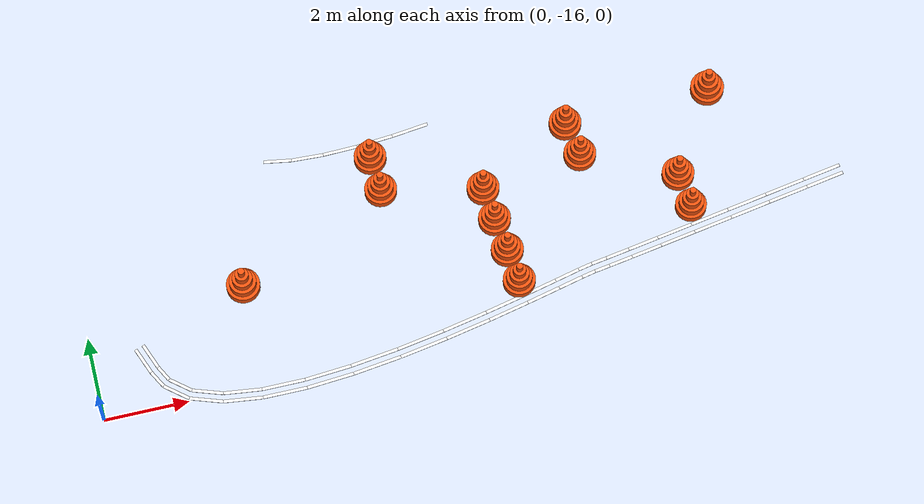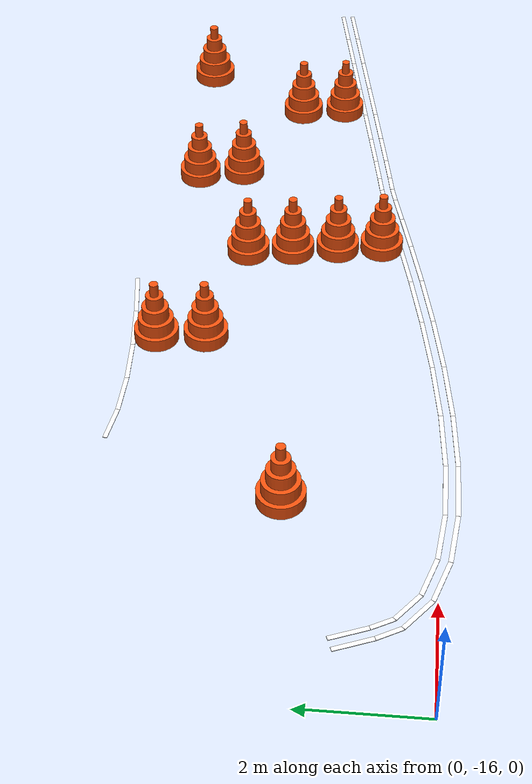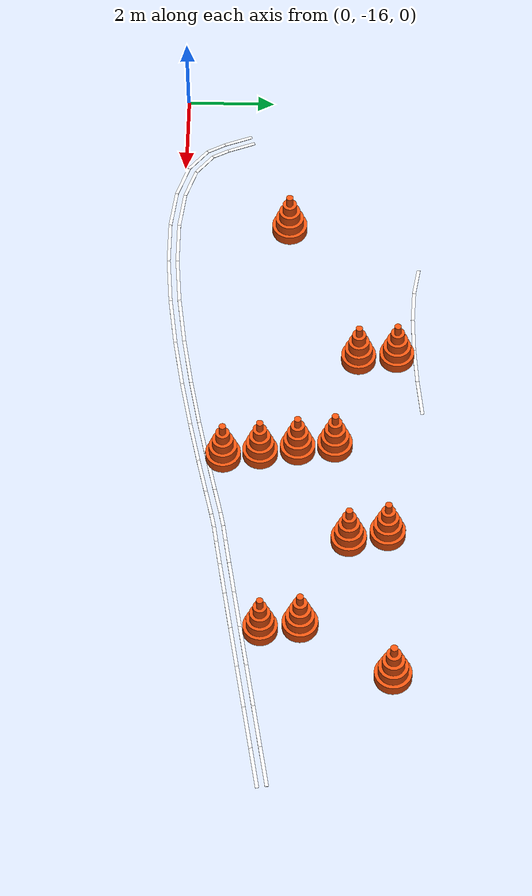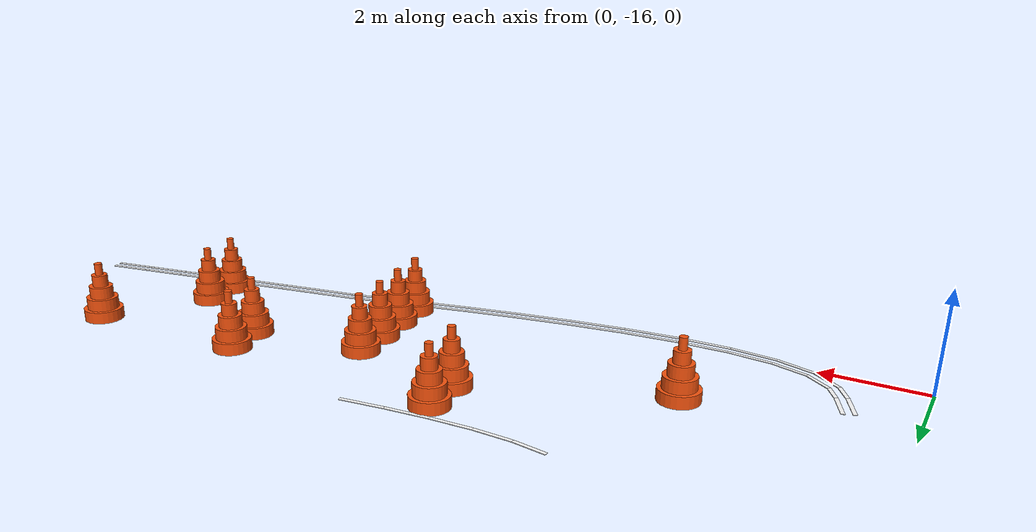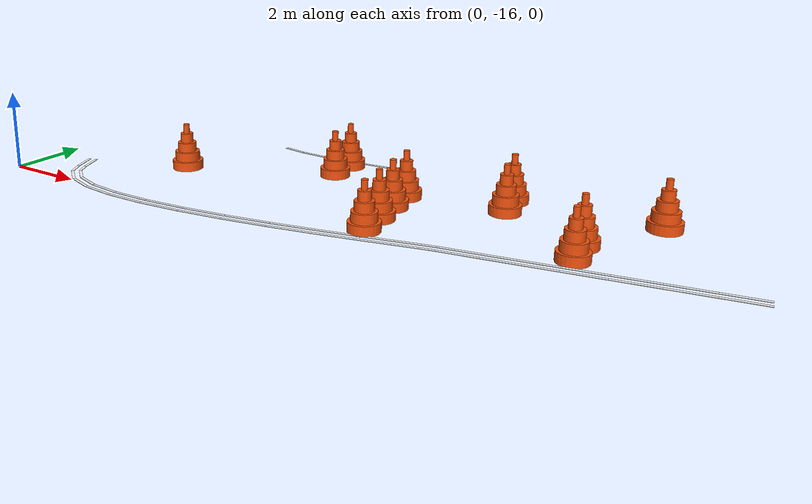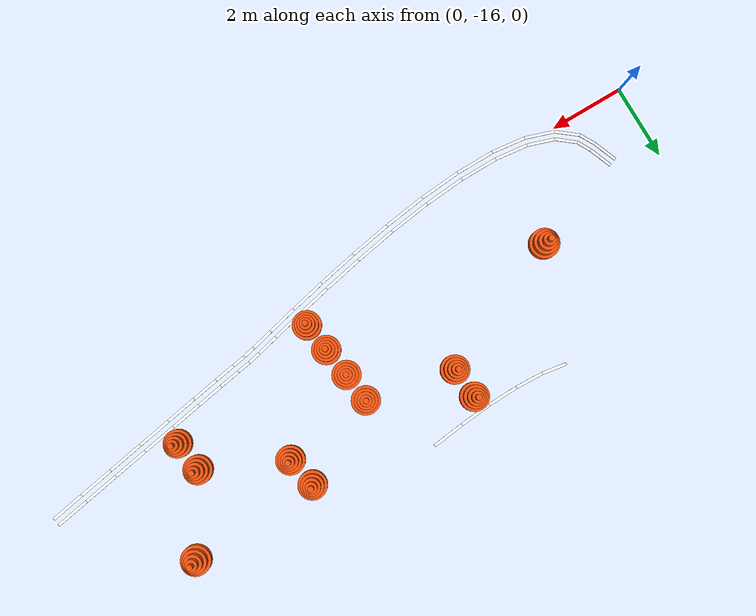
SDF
<sdf version="1.9">
 <world name="igvc_competition">
  <model name="Line_001_0286">
   <static>1</static>
   <pose>1.3452 -14.7275 0.011 0 0 -1.197790</pose>
   <link name="link">
    <visual name="visual">
     <geometry><box><size>0.6462 0.0762 0.012</size></box></geometry>
     <material>
      <ambient>0.98 0.98 0.98 1</ambient>
      <diffuse>0.98 0.98 0.98 1</diffuse>
      <specular>0.05 0.05 0.05 1</specular>
      <emissive>0.9 0.9 0.9 1</emissive>
     </material>
    </visual>
   </link>
  </model>
  <model name="Line_001_0287">
   <static>1</static>
   <pose>1.1604 -14.8035 0.011 0 0 -1.197193</pose>
   <link name="link">
    <visual name="visual">
     <geometry><box><size>0.6644 0.0762 0.012</size></box></geometry>
     <material>
      <ambient>0.98 0.98 0.98 1</ambient>
      <diffuse>0.98 0.98 0.98 1</diffuse>
      <specular>0.05 0.05 0.05 1</specular>
      <emissive>0.9 0.9 0.9 1</emissive>
     </material>
    </visual>
   </link>
  </model>
  <model name="Line_001_0288">
   <static>1</static>
   <pose>1.5574 -15.2035 0.011 0 0 -1.076242</pose>
   <link name="link">
    <visual name="visual">
     <geometry><box><size>0.3980 0.0762 0.012</size></box></geometry>
     <material>
      <ambient>0.98 0.98 0.98 1</ambient>
      <diffuse>0.98 0.98 0.98 1</diffuse>
      <specular>0.05 0.05 0.05 1</specular>
      <emissive>0.9 0.9 0.9 1</emissive>
     </material>
    </visual>
   </link>
  </model>
  <model name="Line_001_0289">
   <static>1</static>
   <pose>1.3901 -15.3100 0.011 0 0 -1.068274</pose>
   <link name="link">
    <visual name="visual">
     <geometry><box><size>0.4499 0.0762 0.012</size></box></geometry>
     <material>
      <ambient>0.98 0.98 0.98 1</ambient>
      <diffuse>0.98 0.98 0.98 1</diffuse>
      <specular>0.05 0.05 0.05 1</specular>
      <emissive>0.9 0.9 0.9 1</emissive>
     </material>
    </visual>
   </link>
  </model>
  <model name="Line_001_0290">
   <static>1</static>
   <pose>1.8845 -15.5650 0.011 0 0 -0.675108</pose>
   <link name="link">
    <visual name="visual">
     <geometry><box><size>0.5962 0.0762 0.012</size></box></geometry>
     <material>
      <ambient>0.98 0.98 0.98 1</ambient>
      <diffuse>0.98 0.98 0.98 1</diffuse>
      <specular>0.05 0.05 0.05 1</specular>
      <emissive>0.9 0.9 0.9 1</emissive>
     </material>
    </visual>
   </link>
  </model>
  <model name="Line_001_0291">
   <static>1</static>
   <pose>1.7600 -15.7171 0.011 0 0 -0.676301</pose>
   <link name="link">
    <visual name="visual">
     <geometry><box><size>0.6709 0.0762 0.012</size></box></geometry>
     <material>
      <ambient>0.98 0.98 0.98 1</ambient>
      <diffuse>0.98 0.98 0.98 1</diffuse>
      <specular>0.05 0.05 0.05 1</specular>
      <emissive>0.9 0.9 0.9 1</emissive>
     </material>
    </visual>
   </link>
  </model>
  <model name="Line_001_0292">
   <static>1</static>
   <pose>2.4663 -15.8667 0.011 0 0 -0.319299</pose>
   <link name="link">
    <visual name="visual">
     <geometry><box><size>0.7353 0.0762 0.012</size></box></geometry>
     <material>
      <ambient>0.98 0.98 0.98 1</ambient>
      <diffuse>0.98 0.98 0.98 1</diffuse>
      <specular>0.05 0.05 0.05 1</specular>
      <emissive>0.9 0.9 0.9 1</emissive>
     </material>
    </visual>
   </link>
  </model>
  <model name="Line_001_0293">
   <static>1</static>
   <pose>2.3967 -16.0521 0.011 0 0 -0.322030</pose>
   <link name="link">
    <visual name="visual">
     <geometry><box><size>0.7909 0.0762 0.012</size></box></geometry>
     <material>
      <ambient>0.98 0.98 0.98 1</ambient>
      <diffuse>0.98 0.98 0.98 1</diffuse>
      <specular>0.05 0.05 0.05 1</specular>
      <emissive>0.9 0.9 0.9 1</emissive>
     </material>
    </visual>
   </link>
  </model>
  <model name="Line_001_0294">
   <static>1</static>
   <pose>3.2598 -16.0346 0.011 0 0 -0.117690</pose>
   <link name="link">
    <visual name="visual">
     <geometry><box><size>0.8951 0.0762 0.012</size></box></geometry>
     <material>
      <ambient>0.98 0.98 0.98 1</ambient>
      <diffuse>0.98 0.98 0.98 1</diffuse>
      <specular>0.05 0.05 0.05 1</specular>
      <emissive>0.9 0.9 0.9 1</emissive>
     </material>
    </visual>
   </link>
  </model>
  <model name="Line_001_0295">
   <static>1</static>
   <pose>3.2322 -16.2321 0.011 0 0 -0.118457</pose>
   <link name="link">
    <visual name="visual">
     <geometry><box><size>0.9274 0.0762 0.012</size></box></geometry>
     <material>
      <ambient>0.98 0.98 0.98 1</ambient>
      <diffuse>0.98 0.98 0.98 1</diffuse>
      <specular>0.05 0.05 0.05 1</specular>
      <emissive>0.9 0.9 0.9 1</emissive>
     </material>
    </visual>
   </link>
  </model>
  <model name="Line_001_0296">
   <static>1</static>
   <pose>4.2176 -16.0856 0.011 0 0 0.003116</pose>
   <link name="link">
    <visual name="visual">
     <geometry><box><size>1.0269 0.0762 0.012</size></box></geometry>
     <material>
      <ambient>0.98 0.98 0.98 1</ambient>
      <diffuse>0.98 0.98 0.98 1</diffuse>
      <specular>0.05 0.05 0.05 1</specular>
      <emissive>0.9 0.9 0.9 1</emissive>
     </material>
    </visual>
   </link>
  </model>
  <model name="Line_001_0297">
   <static>1</static>
   <pose>4.2161 -16.2854 0.011 0 0 0.002866</pose>
   <link name="link">
    <visual name="visual">
     <geometry><box><size>1.0468 0.0762 0.012</size></box></geometry>
     <material>
      <ambient>0.98 0.98 0.98 1</ambient>
      <diffuse>0.98 0.98 0.98 1</diffuse>
      <specular>0.05 0.05 0.05 1</specular>
      <emissive>0.9 0.9 0.9 1</emissive>
     </material>
    </visual>
   </link>
  </model>
  <model name="Line_001_0298">
   <static>1</static>
   <pose>5.2877 -16.0389 0.011 0 0 0.080940</pose>
   <link name="link">
    <visual name="visual">
     <geometry><box><size>1.1169 0.0762 0.012</size></box></geometry>
     <material>
      <ambient>0.98 0.98 0.98 1</ambient>
      <diffuse>0.98 0.98 0.98 1</diffuse>
      <specular>0.05 0.05 0.05 1</specular>
      <emissive>0.9 0.9 0.9 1</emissive>
     </material>
    </visual>
   </link>
  </model>
  <model name="Line_001_0299">
   <static>1</static>
   <pose>5.3026 -16.2382 0.011 0 0 0.080973</pose>
   <link name="link">
    <visual name="visual">
     <geometry><box><size>1.1300 0.0762 0.012</size></box></geometry>
     <material>
      <ambient>0.98 0.98 0.98 1</ambient>
      <diffuse>0.98 0.98 0.98 1</diffuse>
      <specular>0.05 0.05 0.05 1</specular>
      <emissive>0.9 0.9 0.9 1</emissive>
     </material>
    </visual>
   </link>
  </model>
  <model name="Line_001_0300">
   <static>1</static>
   <pose>6.4188 -15.9161 0.011 0 0 0.134335</pose>
   <link name="link">
    <visual name="visual">
     <geometry><box><size>1.1595 0.0762 0.012</size></box></geometry>
     <material>
      <ambient>0.98 0.98 0.98 1</ambient>
      <diffuse>0.98 0.98 0.98 1</diffuse>
      <specular>0.05 0.05 0.05 1</specular>
      <emissive>0.9 0.9 0.9 1</emissive>
     </material>
    </visual>
   </link>
  </model>
  <model name="Line_001_0301">
   <static>1</static>
   <pose>6.4449 -16.1142 0.011 0 0 0.134321</pose>
   <link name="link">
    <visual name="visual">
     <geometry><box><size>1.1686 0.0762 0.012</size></box></geometry>
     <material>
      <ambient>0.98 0.98 0.98 1</ambient>
      <diffuse>0.98 0.98 0.98 1</diffuse>
      <specular>0.05 0.05 0.05 1</specular>
      <emissive>0.9 0.9 0.9 1</emissive>
     </material>
    </visual>
   </link>
  </model>
  <model name="Line_001_0302">
   <static>1</static>
   <pose>7.5610 -15.7394 0.011 0 0 0.172581</pose>
   <link name="link">
    <visual name="visual">
     <geometry><box><size>1.1524 0.0762 0.012</size></box></geometry>
     <material>
      <ambient>0.98 0.98 0.98 1</ambient>
      <diffuse>0.98 0.98 0.98 1</diffuse>
      <specular>0.05 0.05 0.05 1</specular>
      <emissive>0.9 0.9 0.9 1</emissive>
     </material>
    </visual>
   </link>
  </model>
  <model name="Line_001_0303">
   <static>1</static>
   <pose>7.5948 -15.9366 0.011 0 0 0.172468</pose>
   <link name="link">
    <visual name="visual">
     <geometry><box><size>1.1590 0.0762 0.012</size></box></geometry>
     <material>
      <ambient>0.98 0.98 0.98 1</ambient>
      <diffuse>0.98 0.98 0.98 1</diffuse>
      <specular>0.05 0.05 0.05 1</specular>
      <emissive>0.9 0.9 0.9 1</emissive>
     </material>
    </visual>
   </link>
  </model>
  <model name="Line_001_0304">
   <static>1</static>
   <pose>8.6648 -15.5317 0.011 0 0 0.200228</pose>
   <link name="link">
    <visual name="visual">
     <geometry><box><size>1.0941 0.0762 0.012</size></box></geometry>
     <material>
      <ambient>0.98 0.98 0.98 1</ambient>
      <diffuse>0.98 0.98 0.98 1</diffuse>
      <specular>0.05 0.05 0.05 1</specular>
      <emissive>0.9 0.9 0.9 1</emissive>
     </material>
    </visual>
   </link>
  </model>
  <model name="Line_001_0305">
   <static>1</static>
   <pose>8.7041 -15.7278 0.011 0 0 0.200269</pose>
   <link name="link">
    <visual name="visual">
     <geometry><box><size>1.0989 0.0762 0.012</size></box></geometry>
     <material>
      <ambient>0.98 0.98 0.98 1</ambient>
      <diffuse>0.98 0.98 0.98 1</diffuse>
      <specular>0.05 0.05 0.05 1</specular>
      <emissive>0.9 0.9 0.9 1</emissive>
     </material>
    </visual>
   </link>
  </model>
  <model name="Line_001_0306">
   <static>1</static>
   <pose>9.6809 -15.3155 0.011 0 0 0.220224</pose>
   <link name="link">
    <visual name="visual">
     <geometry><box><size>0.9838 0.0762 0.012</size></box></geometry>
     <material>
      <ambient>0.98 0.98 0.98 1</ambient>
      <diffuse>0.98 0.98 0.98 1</diffuse>
      <specular>0.05 0.05 0.05 1</specular>
      <emissive>0.9 0.9 0.9 1</emissive>
     </material>
    </visual>
   </link>
  </model>
  <model name="Line_001_0307">
   <static>1</static>
   <pose>9.7242 -15.5107 0.011 0 0 0.220207</pose>
   <link name="link">
    <visual name="visual">
     <geometry><box><size>0.9870 0.0762 0.012</size></box></geometry>
     <material>
      <ambient>0.98 0.98 0.98 1</ambient>
      <diffuse>0.98 0.98 0.98 1</diffuse>
      <specular>0.05 0.05 0.05 1</specular>
      <emissive>0.9 0.9 0.9 1</emissive>
     </material>
    </visual>
   </link>
  </model>
  <model name="Line_001_0308">
   <static>1</static>
   <pose>10.5603 -15.1133 0.011 0 0 0.232806</pose>
   <link name="link">
    <visual name="visual">
     <geometry><box><size>0.8209 0.0762 0.012</size></box></geometry>
     <material>
      <ambient>0.98 0.98 0.98 1</ambient>
      <diffuse>0.98 0.98 0.98 1</diffuse>
      <specular>0.05 0.05 0.05 1</specular>
      <emissive>0.9 0.9 0.9 1</emissive>
     </material>
    </visual>
   </link>
  </model>
  <model name="Line_001_0309">
   <static>1</static>
   <pose>10.6059 -15.3080 0.011 0 0 0.232859</pose>
   <link name="link">
    <visual name="visual">
     <geometry><box><size>0.8225 0.0762 0.012</size></box></geometry>
     <material>
      <ambient>0.98 0.98 0.98 1</ambient>
      <diffuse>0.98 0.98 0.98 1</diffuse>
      <specular>0.05 0.05 0.05 1</specular>
      <emissive>0.9 0.9 0.9 1</emissive>
     </material>
    </visual>
   </link>
  </model>
  <model name="Line_001_0310">
   <static>1</static>
   <pose>11.2546 -14.9478 0.011 0 0 0.235622</pose>
   <link name="link">
    <visual name="visual">
     <geometry><box><size>0.6066 0.0762 0.012</size></box></geometry>
     <material>
      <ambient>0.98 0.98 0.98 1</ambient>
      <diffuse>0.98 0.98 0.98 1</diffuse>
      <specular>0.05 0.05 0.05 1</specular>
      <emissive>0.9 0.9 0.9 1</emissive>
     </material>
    </visual>
   </link>
  </model>
  <model name="Line_001_0311">
   <static>1</static>
   <pose>11.2999 -15.1425 0.011 0 0 0.235667</pose>
   <link name="link">
    <visual name="visual">
     <geometry><box><size>0.6043 0.0762 0.012</size></box></geometry>
     <material>
      <ambient>0.98 0.98 0.98 1</ambient>
      <diffuse>0.98 0.98 0.98 1</diffuse>
      <specular>0.05 0.05 0.05 1</specular>
      <emissive>0.9 0.9 0.9 1</emissive>
     </material>
    </visual>
   </link>
  </model>
  <model name="Line_001_0312">
   <static>1</static>
   <pose>11.7157 -14.8414 0.011 0 0 0.211011</pose>
   <link name="link">
    <visual name="visual">
     <geometry><box><size>0.3399 0.0762 0.012</size></box></geometry>
     <material>
      <ambient>0.98 0.98 0.98 1</ambient>
      <diffuse>0.98 0.98 0.98 1</diffuse>
      <specular>0.05 0.05 0.05 1</specular>
      <emissive>0.9 0.9 0.9 1</emissive>
     </material>
    </visual>
   </link>
  </model>
  <model name="Line_001_0313">
   <static>1</static>
   <pose>11.7562 -15.0372 0.011 0 0 0.210904</pose>
   <link name="link">
    <visual name="visual">
     <geometry><box><size>0.3325 0.0762 0.012</size></box></geometry>
     <material>
      <ambient>0.98 0.98 0.98 1</ambient>
      <diffuse>0.98 0.98 0.98 1</diffuse>
      <specular>0.05 0.05 0.05 1</specular>
      <emissive>0.9 0.9 0.9 1</emissive>
     </material>
    </visual>
   </link>
  </model>
  <model name="Line_001_0314">
   <static>1</static>
   <pose>12.0647 -14.7764 0.011 0 0 0.159509</pose>
   <link name="link">
    <visual name="visual">
     <geometry><box><size>0.3702 0.0762 0.012</size></box></geometry>
     <material>
      <ambient>0.98 0.98 0.98 1</ambient>
      <diffuse>0.98 0.98 0.98 1</diffuse>
      <specular>0.05 0.05 0.05 1</specular>
      <emissive>0.9 0.9 0.9 1</emissive>
     </material>
    </visual>
   </link>
  </model>
  <model name="Line_001_0315">
   <static>1</static>
   <pose>12.0994 -14.9733 0.011 0 0 0.159487</pose>
   <link name="link">
    <visual name="visual">
     <geometry><box><size>0.3658 0.0762 0.012</size></box></geometry>
     <material>
      <ambient>0.98 0.98 0.98 1</ambient>
      <diffuse>0.98 0.98 0.98 1</diffuse>
      <specular>0.05 0.05 0.05 1</specular>
      <emissive>0.9 0.9 0.9 1</emissive>
     </material>
    </visual>
   </link>
  </model>
  <model name="Line_001_0316">
   <static>1</static>
   <pose>12.5310 -14.6990 0.011 0 0 0.167693</pose>
   <link name="link">
    <visual name="visual">
     <geometry><box><size>0.5752 0.0762 0.012</size></box></geometry>
     <material>
      <ambient>0.98 0.98 0.98 1</ambient>
      <diffuse>0.98 0.98 0.98 1</diffuse>
      <specular>0.05 0.05 0.05 1</specular>
      <emissive>0.9 0.9 0.9 1</emissive>
     </material>
    </visual>
   </link>
  </model>
  <model name="Line_001_0317">
   <static>1</static>
   <pose>12.5640 -14.8963 0.011 0 0 0.167574</pose>
   <link name="link">
    <visual name="visual">
     <geometry><box><size>0.5762 0.0762 0.012</size></box></geometry>
     <material>
      <ambient>0.98 0.98 0.98 1</ambient>
      <diffuse>0.98 0.98 0.98 1</diffuse>
      <specular>0.05 0.05 0.05 1</specular>
      <emissive>0.9 0.9 0.9 1</emissive>
     </material>
    </visual>
   </link>
  </model>
  <model name="Line_001_0318">
   <static>1</static>
   <pose>13.1793 -14.5880 0.011 0 0 0.170877</pose>
   <link name="link">
    <visual name="visual">
     <geometry><box><size>0.7404 0.0762 0.012</size></box></geometry>
     <material>
      <ambient>0.98 0.98 0.98 1</ambient>
      <diffuse>0.98 0.98 0.98 1</diffuse>
      <specular>0.05 0.05 0.05 1</specular>
      <emissive>0.9 0.9 0.9 1</emissive>
     </material>
    </visual>
   </link>
  </model>
  <model name="Line_001_0319">
   <static>1</static>
   <pose>13.2132 -14.7852 0.011 0 0 0.170873</pose>
   <link name="link">
    <visual name="visual">
     <geometry><box><size>0.7410 0.0762 0.012</size></box></geometry>
     <material>
      <ambient>0.98 0.98 0.98 1</ambient>
      <diffuse>0.98 0.98 0.98 1</diffuse>
      <specular>0.05 0.05 0.05 1</specular>
      <emissive>0.9 0.9 0.9 1</emissive>
     </material>
    </visual>
   </link>
  </model>
  <model name="Line_001_0320">
   <static>1</static>
   <pose>13.9692 -14.4511 0.011 0 0 0.172464</pose>
   <link name="link">
    <visual name="visual">
     <geometry><box><size>0.8630 0.0762 0.012</size></box></geometry>
     <material>
      <ambient>0.98 0.98 0.98 1</ambient>
      <diffuse>0.98 0.98 0.98 1</diffuse>
      <specular>0.05 0.05 0.05 1</specular>
      <emissive>0.9 0.9 0.9 1</emissive>
     </material>
    </visual>
   </link>
  </model>
  <model name="Line_001_0321">
   <static>1</static>
   <pose>14.0035 -14.6481 0.011 0 0 0.172538</pose>
   <link name="link">
    <visual name="visual">
     <geometry><box><size>0.8632 0.0762 0.012</size></box></geometry>
     <material>
      <ambient>0.98 0.98 0.98 1</ambient>
      <diffuse>0.98 0.98 0.98 1</diffuse>
      <specular>0.05 0.05 0.05 1</specular>
      <emissive>0.9 0.9 0.9 1</emissive>
     </material>
    </visual>
   </link>
  </model>
  <model name="Line_001_0322">
   <static>1</static>
   <pose>14.8587 -14.2957 0.011 0 0 0.173431</pose>
   <link name="link">
    <visual name="visual">
     <geometry><box><size>0.9428 0.0762 0.012</size></box></geometry>
     <material>
      <ambient>0.98 0.98 0.98 1</ambient>
      <diffuse>0.98 0.98 0.98 1</diffuse>
      <specular>0.05 0.05 0.05 1</specular>
      <emissive>0.9 0.9 0.9 1</emissive>
     </material>
    </visual>
   </link>
  </model>
  <model name="Line_001_0323">
   <static>1</static>
   <pose>14.8931 -14.4927 0.011 0 0 0.173395</pose>
   <link name="link">
    <visual name="visual">
     <geometry><box><size>0.9430 0.0762 0.012</size></box></geometry>
     <material>
      <ambient>0.98 0.98 0.98 1</ambient>
      <diffuse>0.98 0.98 0.98 1</diffuse>
      <specular>0.05 0.05 0.05 1</specular>
      <emissive>0.9 0.9 0.9 1</emissive>
     </material>
    </visual>
   </link>
  </model>
  <model name="Line_001_0324">
   <static>1</static>
   <pose>15.8056 -14.1296 0.011 0 0 0.173821</pose>
   <link name="link">
    <visual name="visual">
     <geometry><box><size>0.9801 0.0762 0.012</size></box></geometry>
     <material>
      <ambient>0.98 0.98 0.98 1</ambient>
      <diffuse>0.98 0.98 0.98 1</diffuse>
      <specular>0.05 0.05 0.05 1</specular>
      <emissive>0.9 0.9 0.9 1</emissive>
     </material>
    </visual>
   </link>
  </model>
  <model name="Line_001_0325">
   <static>1</static>
   <pose>15.8403 -14.3266 0.011 0 0 0.173821</pose>
   <link name="link">
    <visual name="visual">
     <geometry><box><size>0.9801 0.0762 0.012</size></box></geometry>
     <material>
      <ambient>0.98 0.98 0.98 1</ambient>
      <diffuse>0.98 0.98 0.98 1</diffuse>
      <specular>0.05 0.05 0.05 1</specular>
      <emissive>0.9 0.9 0.9 1</emissive>
     </material>
    </visual>
   </link>
  </model>
  <model name="Line_001_0326">
   <static>1</static>
   <pose>16.7683 -13.9604 0.011 0 0 0.174054</pose>
   <link name="link">
    <visual name="visual">
     <geometry><box><size>0.9747 0.0762 0.012</size></box></geometry>
     <material>
      <ambient>0.98 0.98 0.98 1</ambient>
      <diffuse>0.98 0.98 0.98 1</diffuse>
      <specular>0.05 0.05 0.05 1</specular>
      <emissive>0.9 0.9 0.9 1</emissive>
     </material>
    </visual>
   </link>
  </model>
  <model name="Line_001_0327">
   <static>1</static>
   <pose>16.8029 -14.1574 0.011 0 0 0.174054</pose>
   <link name="link">
    <visual name="visual">
     <geometry><box><size>0.9747 0.0762 0.012</size></box></geometry>
     <material>
      <ambient>0.98 0.98 0.98 1</ambient>
      <diffuse>0.98 0.98 0.98 1</diffuse>
      <specular>0.05 0.05 0.05 1</specular>
      <emissive>0.9 0.9 0.9 1</emissive>
     </material>
    </visual>
   </link>
  </model>
  <model name="Line_001_0328">
   <static>1</static>
   <pose>17.7046 -13.7959 0.011 0 0 0.173772</pose>
   <link name="link">
    <visual name="visual">
     <geometry><box><size>0.9266 0.0762 0.012</size></box></geometry>
     <material>
      <ambient>0.98 0.98 0.98 1</ambient>
      <diffuse>0.98 0.98 0.98 1</diffuse>
      <specular>0.05 0.05 0.05 1</specular>
      <emissive>0.9 0.9 0.9 1</emissive>
     </material>
    </visual>
   </link>
  </model>
  <model name="Line_001_0329">
   <static>1</static>
   <pose>17.7392 -13.9929 0.011 0 0 0.173791</pose>
   <link name="link">
    <visual name="visual">
     <geometry><box><size>0.9265 0.0762 0.012</size></box></geometry>
     <material>
      <ambient>0.98 0.98 0.98 1</ambient>
      <diffuse>0.98 0.98 0.98 1</diffuse>
      <specular>0.05 0.05 0.05 1</specular>
      <emissive>0.9 0.9 0.9 1</emissive>
     </material>
    </visual>
   </link>
  </model>
  <model name="Line_002_0293">
   <static>1</static>
   <pose>5.2308 -10.6634 0.011 0 0 -0.159210</pose>
   <link name="link">
    <visual name="visual">
     <geometry><box><size>0.6617 0.0762 0.012</size></box></geometry>
     <material>
      <ambient>0.98 0.98 0.98 1</ambient>
      <diffuse>0.98 0.98 0.98 1</diffuse>
      <specular>0.05 0.05 0.05 1</specular>
      <emissive>0.9 0.9 0.9 1</emissive>
     </material>
    </visual>
   </link>
  </model>
  <model name="Line_002_0295">
   <static>1</static>
   <pose>5.9352 -10.7317 0.011 0 0 -0.042061</pose>
   <link name="link">
    <visual name="visual">
     <geometry><box><size>0.7563 0.0762 0.012</size></box></geometry>
     <material>
      <ambient>0.98 0.98 0.98 1</ambient>
      <diffuse>0.98 0.98 0.98 1</diffuse>
      <specular>0.05 0.05 0.05 1</specular>
      <emissive>0.9 0.9 0.9 1</emissive>
     </material>
    </visual>
   </link>
  </model>
  <model name="Line_002_0297">
   <static>1</static>
   <pose>6.7268 -10.7339 0.011 0 0 0.033096</pose>
   <link name="link">
    <visual name="visual">
     <geometry><box><size>0.8281 0.0762 0.012</size></box></geometry>
     <material>
      <ambient>0.98 0.98 0.98 1</ambient>
      <diffuse>0.98 0.98 0.98 1</diffuse>
      <specular>0.05 0.05 0.05 1</specular>
      <emissive>0.9 0.9 0.9 1</emissive>
     </material>
    </visual>
   </link>
  </model>
  <model name="Line_002_0299">
   <static>1</static>
   <pose>7.5747 -10.6834 0.011 0 0 0.084676</pose>
   <link name="link">
    <visual name="visual">
     <geometry><box><size>0.8714 0.0762 0.012</size></box></geometry>
     <material>
      <ambient>0.98 0.98 0.98 1</ambient>
      <diffuse>0.98 0.98 0.98 1</diffuse>
      <specular>0.05 0.05 0.05 1</specular>
      <emissive>0.9 0.9 0.9 1</emissive>
     </material>
    </visual>
   </link>
  </model>
  <model name="Line_002_0301">
   <static>1</static>
   <pose>8.4474 -10.5927 0.011 0 0 0.121955</pose>
   <link name="link">
    <visual name="visual">
     <geometry><box><size>0.8837 0.0762 0.012</size></box></geometry>
     <material>
      <ambient>0.98 0.98 0.98 1</ambient>
      <diffuse>0.98 0.98 0.98 1</diffuse>
      <specular>0.05 0.05 0.05 1</specular>
      <emissive>0.9 0.9 0.9 1</emissive>
     </material>
    </visual>
   </link>
  </model>
  <model name="Cones_023">
   <static>1</static>
   <pose>7.3769 -11.1045 0 0 0 0</pose>
   <link name="link">
    <collision name="collision">
     <pose>0 0 0.5985 0 0 0</pose>
     <geometry><cylinder><radius>0.3831</radius><length>1.1969</length></cylinder></geometry>
    </collision>
    <visual name="visual_0">
     <pose>0 0 0.1197 0 0 0</pose>
     <geometry><cylinder><radius>0.3831</radius><length>0.2394</length></cylinder></geometry>
     <material>
      <ambient>0.95 0.32 0.05 1.0</ambient>
      <diffuse>0.95 0.32 0.05 1.0</diffuse>
      <specular>0.05 0.05 0.05 1</specular>
     </material>
    </visual>
    <visual name="visual_1">
     <pose>0 0 0.3591 0 0 0</pose>
     <geometry><cylinder><radius>0.3065</radius><length>0.2394</length></cylinder></geometry>
     <material>
      <ambient>0.95 0.32 0.05 1.0</ambient>
      <diffuse>0.95 0.32 0.05 1.0</diffuse>
      <specular>0.05 0.05 0.05 1</specular>
     </material>
    </visual>
    <visual name="visual_2">
     <pose>0 0 0.5985 0 0 0</pose>
     <geometry><cylinder><radius>0.2299</radius><length>0.2394</length></cylinder></geometry>
     <material>
      <ambient>0.95 0.32 0.05 1.0</ambient>
      <diffuse>0.95 0.32 0.05 1.0</diffuse>
      <specular>0.05 0.05 0.05 1</specular>
     </material>
    </visual>
    <visual name="visual_3">
     <pose>0 0 0.8378 0 0 0</pose>
     <geometry><cylinder><radius>0.1532</radius><length>0.2394</length></cylinder></geometry>
     <material>
      <ambient>0.95 0.32 0.05 1.0</ambient>
      <diffuse>0.95 0.32 0.05 1.0</diffuse>
      <specular>0.05 0.05 0.05 1</specular>
     </material>
    </visual>
    <visual name="visual_4">
     <pose>0 0 1.0772 0 0 0</pose>
     <geometry><cylinder><radius>0.0766</radius><length>0.2394</length></cylinder></geometry>
     <material>
      <ambient>0.95 0.32 0.05 1.0</ambient>
      <diffuse>0.95 0.32 0.05 1.0</diffuse>
      <specular>0.05 0.05 0.05 1</specular>
     </material>
    </visual>
   </link>
  </model>
  <model name="Cones_024">
   <static>1</static>
   <pose>7.4462 -11.9508 0 0 0 0</pose>
   <link name="link">
    <collision name="collision">
     <pose>0 0 0.5985 0 0 0</pose>
     <geometry><cylinder><radius>0.3831</radius><length>1.1969</length></cylinder></geometry>
    </collision>
    <visual name="visual_0">
     <pose>0 0 0.1197 0 0 0</pose>
     <geometry><cylinder><radius>0.3831</radius><length>0.2394</length></cylinder></geometry>
     <material>
      <ambient>0.95 0.32 0.05 1.0</ambient>
      <diffuse>0.95 0.32 0.05 1.0</diffuse>
      <specular>0.05 0.05 0.05 1</specular>
     </material>
    </visual>
    <visual name="visual_1">
     <pose>0 0 0.3591 0 0 0</pose>
     <geometry><cylinder><radius>0.3065</radius><length>0.2394</length></cylinder></geometry>
     <material>
      <ambient>0.95 0.32 0.05 1.0</ambient>
      <diffuse>0.95 0.32 0.05 1.0</diffuse>
      <specular>0.05 0.05 0.05 1</specular>
     </material>
    </visual>
    <visual name="visual_2">
     <pose>0 0 0.5985 0 0 0</pose>
     <geometry><cylinder><radius>0.2299</radius><length>0.2394</length></cylinder></geometry>
     <material>
      <ambient>0.95 0.32 0.05 1.0</ambient>
      <diffuse>0.95 0.32 0.05 1.0</diffuse>
      <specular>0.05 0.05 0.05 1</specular>
     </material>
    </visual>
    <visual name="visual_3">
     <pose>0 0 0.8378 0 0 0</pose>
     <geometry><cylinder><radius>0.1532</radius><length>0.2394</length></cylinder></geometry>
     <material>
      <ambient>0.95 0.32 0.05 1.0</ambient>
      <diffuse>0.95 0.32 0.05 1.0</diffuse>
      <specular>0.05 0.05 0.05 1</specular>
     </material>
    </visual>
    <visual name="visual_4">
     <pose>0 0 1.0772 0 0 0</pose>
     <geometry><cylinder><radius>0.0766</radius><length>0.2394</length></cylinder></geometry>
     <material>
      <ambient>0.95 0.32 0.05 1.0</ambient>
      <diffuse>0.95 0.32 0.05 1.0</diffuse>
      <specular>0.05 0.05 0.05 1</specular>
     </material>
    </visual>
   </link>
  </model>
  <model name="Cones_028">
   <static>1</static>
   <pose>10.0183 -14.0643 0 0 0 0</pose>
   <link name="link">
    <collision name="collision">
     <pose>0 0 0.5985 0 0 0</pose>
     <geometry><cylinder><radius>0.3831</radius><length>1.1969</length></cylinder></geometry>
    </collision>
    <visual name="visual_0">
     <pose>0 0 0.1197 0 0 0</pose>
     <geometry><cylinder><radius>0.3831</radius><length>0.2394</length></cylinder></geometry>
     <material>
      <ambient>0.95 0.32 0.05 1.0</ambient>
      <diffuse>0.95 0.32 0.05 1.0</diffuse>
      <specular>0.05 0.05 0.05 1</specular>
     </material>
    </visual>
    <visual name="visual_1">
     <pose>0 0 0.3591 0 0 0</pose>
     <geometry><cylinder><radius>0.3065</radius><length>0.2394</length></cylinder></geometry>
     <material>
      <ambient>0.95 0.32 0.05 1.0</ambient>
      <diffuse>0.95 0.32 0.05 1.0</diffuse>
      <specular>0.05 0.05 0.05 1</specular>
     </material>
    </visual>
    <visual name="visual_2">
     <pose>0 0 0.5985 0 0 0</pose>
     <geometry><cylinder><radius>0.2299</radius><length>0.2394</length></cylinder></geometry>
     <material>
      <ambient>0.95 0.32 0.05 1.0</ambient>
      <diffuse>0.95 0.32 0.05 1.0</diffuse>
      <specular>0.05 0.05 0.05 1</specular>
     </material>
    </visual>
    <visual name="visual_3">
     <pose>0 0 0.8378 0 0 0</pose>
     <geometry><cylinder><radius>0.1532</radius><length>0.2394</length></cylinder></geometry>
     <material>
      <ambient>0.95 0.32 0.05 1.0</ambient>
      <diffuse>0.95 0.32 0.05 1.0</diffuse>
      <specular>0.05 0.05 0.05 1</specular>
     </material>
    </visual>
    <visual name="visual_4">
     <pose>0 0 1.0772 0 0 0</pose>
     <geometry><cylinder><radius>0.0766</radius><length>0.2394</length></cylinder></geometry>
     <material>
      <ambient>0.95 0.32 0.05 1.0</ambient>
      <diffuse>0.95 0.32 0.05 1.0</diffuse>
      <specular>0.05 0.05 0.05 1</specular>
     </material>
    </visual>
   </link>
  </model>
  <model name="Cones_029">
   <static>1</static>
   <pose>10.1214 -14.8634 0 0 0 0</pose>
   <link name="link">
    <collision name="collision">
     <pose>0 0 0.5985 0 0 0</pose>
     <geometry><cylinder><radius>0.3831</radius><length>1.1969</length></cylinder></geometry>
    </collision>
    <visual name="visual_0">
     <pose>0 0 0.1197 0 0 0</pose>
     <geometry><cylinder><radius>0.3831</radius><length>0.2394</length></cylinder></geometry>
     <material>
      <ambient>0.95 0.32 0.05 1.0</ambient>
      <diffuse>0.95 0.32 0.05 1.0</diffuse>
      <specular>0.05 0.05 0.05 1</specular>
     </material>
    </visual>
    <visual name="visual_1">
     <pose>0 0 0.3591 0 0 0</pose>
     <geometry><cylinder><radius>0.3065</radius><length>0.2394</length></cylinder></geometry>
     <material>
      <ambient>0.95 0.32 0.05 1.0</ambient>
      <diffuse>0.95 0.32 0.05 1.0</diffuse>
      <specular>0.05 0.05 0.05 1</specular>
     </material>
    </visual>
    <visual name="visual_2">
     <pose>0 0 0.5985 0 0 0</pose>
     <geometry><cylinder><radius>0.2299</radius><length>0.2394</length></cylinder></geometry>
     <material>
      <ambient>0.95 0.32 0.05 1.0</ambient>
      <diffuse>0.95 0.32 0.05 1.0</diffuse>
      <specular>0.05 0.05 0.05 1</specular>
     </material>
    </visual>
    <visual name="visual_3">
     <pose>0 0 0.8378 0 0 0</pose>
     <geometry><cylinder><radius>0.1532</radius><length>0.2394</length></cylinder></geometry>
     <material>
      <ambient>0.95 0.32 0.05 1.0</ambient>
      <diffuse>0.95 0.32 0.05 1.0</diffuse>
      <specular>0.05 0.05 0.05 1</specular>
     </material>
    </visual>
    <visual name="visual_4">
     <pose>0 0 1.0772 0 0 0</pose>
     <geometry><cylinder><radius>0.0766</radius><length>0.2394</length></cylinder></geometry>
     <material>
      <ambient>0.95 0.32 0.05 1.0</ambient>
      <diffuse>0.95 0.32 0.05 1.0</diffuse>
      <specular>0.05 0.05 0.05 1</specular>
     </material>
    </visual>
   </link>
  </model>
  <model name="Cones_031">
   <static>1</static>
   <pose>12.0653 -11.2924 0 0 0 0</pose>
   <link name="link">
    <collision name="collision">
     <pose>0 0 0.5985 0 0 0</pose>
     <geometry><cylinder><radius>0.3831</radius><length>1.1969</length></cylinder></geometry>
    </collision>
    <visual name="visual_0">
     <pose>0 0 0.1197 0 0 0</pose>
     <geometry><cylinder><radius>0.3831</radius><length>0.2394</length></cylinder></geometry>
     <material>
      <ambient>0.95 0.32 0.05 1.0</ambient>
      <diffuse>0.95 0.32 0.05 1.0</diffuse>
      <specular>0.05 0.05 0.05 1</specular>
     </material>
    </visual>
    <visual name="visual_1">
     <pose>0 0 0.3591 0 0 0</pose>
     <geometry><cylinder><radius>0.3065</radius><length>0.2394</length></cylinder></geometry>
     <material>
      <ambient>0.95 0.32 0.05 1.0</ambient>
      <diffuse>0.95 0.32 0.05 1.0</diffuse>
      <specular>0.05 0.05 0.05 1</specular>
     </material>
    </visual>
    <visual name="visual_2">
     <pose>0 0 0.5985 0 0 0</pose>
     <geometry><cylinder><radius>0.2299</radius><length>0.2394</length></cylinder></geometry>
     <material>
      <ambient>0.95 0.32 0.05 1.0</ambient>
      <diffuse>0.95 0.32 0.05 1.0</diffuse>
      <specular>0.05 0.05 0.05 1</specular>
     </material>
    </visual>
    <visual name="visual_3">
     <pose>0 0 0.8378 0 0 0</pose>
     <geometry><cylinder><radius>0.1532</radius><length>0.2394</length></cylinder></geometry>
     <material>
      <ambient>0.95 0.32 0.05 1.0</ambient>
      <diffuse>0.95 0.32 0.05 1.0</diffuse>
      <specular>0.05 0.05 0.05 1</specular>
     </material>
    </visual>
    <visual name="visual_4">
     <pose>0 0 1.0772 0 0 0</pose>
     <geometry><cylinder><radius>0.0766</radius><length>0.2394</length></cylinder></geometry>
     <material>
      <ambient>0.95 0.32 0.05 1.0</ambient>
      <diffuse>0.95 0.32 0.05 1.0</diffuse>
      <specular>0.05 0.05 0.05 1</specular>
     </material>
    </visual>
   </link>
  </model>
  <model name="Cones_032">
   <static>1</static>
   <pose>14.3741 -13.1159 0 0 0 0</pose>
   <link name="link">
    <collision name="collision">
     <pose>0 0 0.5985 0 0 0</pose>
     <geometry><cylinder><radius>0.3831</radius><length>1.1969</length></cylinder></geometry>
    </collision>
    <visual name="visual_0">
     <pose>0 0 0.1197 0 0 0</pose>
     <geometry><cylinder><radius>0.3831</radius><length>0.2394</length></cylinder></geometry>
     <material>
      <ambient>0.95 0.32 0.05 1.0</ambient>
      <diffuse>0.95 0.32 0.05 1.0</diffuse>
      <specular>0.05 0.05 0.05 1</specular>
     </material>
    </visual>
    <visual name="visual_1">
     <pose>0 0 0.3591 0 0 0</pose>
     <geometry><cylinder><radius>0.3065</radius><length>0.2394</length></cylinder></geometry>
     <material>
      <ambient>0.95 0.32 0.05 1.0</ambient>
      <diffuse>0.95 0.32 0.05 1.0</diffuse>
      <specular>0.05 0.05 0.05 1</specular>
     </material>
    </visual>
    <visual name="visual_2">
     <pose>0 0 0.5985 0 0 0</pose>
     <geometry><cylinder><radius>0.2299</radius><length>0.2394</length></cylinder></geometry>
     <material>
      <ambient>0.95 0.32 0.05 1.0</ambient>
      <diffuse>0.95 0.32 0.05 1.0</diffuse>
      <specular>0.05 0.05 0.05 1</specular>
     </material>
    </visual>
    <visual name="visual_3">
     <pose>0 0 0.8378 0 0 0</pose>
     <geometry><cylinder><radius>0.1532</radius><length>0.2394</length></cylinder></geometry>
     <material>
      <ambient>0.95 0.32 0.05 1.0</ambient>
      <diffuse>0.95 0.32 0.05 1.0</diffuse>
      <specular>0.05 0.05 0.05 1</specular>
     </material>
    </visual>
    <visual name="visual_4">
     <pose>0 0 1.0772 0 0 0</pose>
     <geometry><cylinder><radius>0.0766</radius><length>0.2394</length></cylinder></geometry>
     <material>
      <ambient>0.95 0.32 0.05 1.0</ambient>
      <diffuse>0.95 0.32 0.05 1.0</diffuse>
      <specular>0.05 0.05 0.05 1</specular>
     </material>
    </visual>
   </link>
  </model>
  <model name="Cones_033">
   <static>1</static>
   <pose>14.4826 -13.9474 0 0 0 0</pose>
   <link name="link">
    <collision name="collision">
     <pose>0 0 0.5985 0 0 0</pose>
     <geometry><cylinder><radius>0.3689</radius><length>1.1969</length></cylinder></geometry>
    </collision>
    <visual name="visual_0">
     <pose>0 0 0.1197 0 0 0</pose>
     <geometry><cylinder><radius>0.3689</radius><length>0.2394</length></cylinder></geometry>
     <material>
      <ambient>0.95 0.32 0.05 1.0</ambient>
      <diffuse>0.95 0.32 0.05 1.0</diffuse>
      <specular>0.05 0.05 0.05 1</specular>
     </material>
    </visual>
    <visual name="visual_1">
     <pose>0 0 0.3591 0 0 0</pose>
     <geometry><cylinder><radius>0.2951</radius><length>0.2394</length></cylinder></geometry>
     <material>
      <ambient>0.95 0.32 0.05 1.0</ambient>
      <diffuse>0.95 0.32 0.05 1.0</diffuse>
      <specular>0.05 0.05 0.05 1</specular>
     </material>
    </visual>
    <visual name="visual_2">
     <pose>0 0 0.5985 0 0 0</pose>
     <geometry><cylinder><radius>0.2213</radius><length>0.2394</length></cylinder></geometry>
     <material>
      <ambient>0.95 0.32 0.05 1.0</ambient>
      <diffuse>0.95 0.32 0.05 1.0</diffuse>
      <specular>0.05 0.05 0.05 1</specular>
     </material>
    </visual>
    <visual name="visual_3">
     <pose>0 0 0.8378 0 0 0</pose>
     <geometry><cylinder><radius>0.1476</radius><length>0.2394</length></cylinder></geometry>
     <material>
      <ambient>0.95 0.32 0.05 1.0</ambient>
      <diffuse>0.95 0.32 0.05 1.0</diffuse>
      <specular>0.05 0.05 0.05 1</specular>
     </material>
    </visual>
    <visual name="visual_4">
     <pose>0 0 1.0772 0 0 0</pose>
     <geometry><cylinder><radius>0.0738</radius><length>0.2394</length></cylinder></geometry>
     <material>
      <ambient>0.95 0.32 0.05 1.0</ambient>
      <diffuse>0.95 0.32 0.05 1.0</diffuse>
      <specular>0.05 0.05 0.05 1</specular>
     </material>
    </visual>
   </link>
  </model>
  <model name="Cones_034">
   <static>1</static>
   <pose>9.8998 -13.2527 0 0 0 0</pose>
   <link name="link">
    <collision name="collision">
     <pose>0 0 0.5985 0 0 0</pose>
     <geometry><cylinder><radius>0.3831</radius><length>1.1969</length></cylinder></geometry>
    </collision>
    <visual name="visual_0">
     <pose>0 0 0.1197 0 0 0</pose>
     <geometry><cylinder><radius>0.3831</radius><length>0.2394</length></cylinder></geometry>
     <material>
      <ambient>0.95 0.32 0.05 1.0</ambient>
      <diffuse>0.95 0.32 0.05 1.0</diffuse>
      <specular>0.05 0.05 0.05 1</specular>
     </material>
    </visual>
    <visual name="visual_1">
     <pose>0 0 0.3591 0 0 0</pose>
     <geometry><cylinder><radius>0.3065</radius><length>0.2394</length></cylinder></geometry>
     <material>
      <ambient>0.95 0.32 0.05 1.0</ambient>
      <diffuse>0.95 0.32 0.05 1.0</diffuse>
      <specular>0.05 0.05 0.05 1</specular>
     </material>
    </visual>
    <visual name="visual_2">
     <pose>0 0 0.5985 0 0 0</pose>
     <geometry><cylinder><radius>0.2299</radius><length>0.2394</length></cylinder></geometry>
     <material>
      <ambient>0.95 0.32 0.05 1.0</ambient>
      <diffuse>0.95 0.32 0.05 1.0</diffuse>
      <specular>0.05 0.05 0.05 1</specular>
     </material>
    </visual>
    <visual name="visual_3">
     <pose>0 0 0.8378 0 0 0</pose>
     <geometry><cylinder><radius>0.1532</radius><length>0.2394</length></cylinder></geometry>
     <material>
      <ambient>0.95 0.32 0.05 1.0</ambient>
      <diffuse>0.95 0.32 0.05 1.0</diffuse>
      <specular>0.05 0.05 0.05 1</specular>
     </material>
    </visual>
    <visual name="visual_4">
     <pose>0 0 1.0772 0 0 0</pose>
     <geometry><cylinder><radius>0.0766</radius><length>0.2394</length></cylinder></geometry>
     <material>
      <ambient>0.95 0.32 0.05 1.0</ambient>
      <diffuse>0.95 0.32 0.05 1.0</diffuse>
      <specular>0.05 0.05 0.05 1</specular>
     </material>
    </visual>
   </link>
  </model>
  <model name="Cones_035">
   <static>1</static>
   <pose>9.8070 -12.4451 0 0 0 0</pose>
   <link name="link">
    <collision name="collision">
     <pose>0 0 0.5985 0 0 0</pose>
     <geometry><cylinder><radius>0.3831</radius><length>1.1969</length></cylinder></geometry>
    </collision>
    <visual name="visual_0">
     <pose>0 0 0.1197 0 0 0</pose>
     <geometry><cylinder><radius>0.3831</radius><length>0.2394</length></cylinder></geometry>
     <material>
      <ambient>0.95 0.32 0.05 1.0</ambient>
      <diffuse>0.95 0.32 0.05 1.0</diffuse>
      <specular>0.05 0.05 0.05 1</specular>
     </material>
    </visual>
    <visual name="visual_1">
     <pose>0 0 0.3591 0 0 0</pose>
     <geometry><cylinder><radius>0.3065</radius><length>0.2394</length></cylinder></geometry>
     <material>
      <ambient>0.95 0.32 0.05 1.0</ambient>
      <diffuse>0.95 0.32 0.05 1.0</diffuse>
      <specular>0.05 0.05 0.05 1</specular>
     </material>
    </visual>
    <visual name="visual_2">
     <pose>0 0 0.5985 0 0 0</pose>
     <geometry><cylinder><radius>0.2299</radius><length>0.2394</length></cylinder></geometry>
     <material>
      <ambient>0.95 0.32 0.05 1.0</ambient>
      <diffuse>0.95 0.32 0.05 1.0</diffuse>
      <specular>0.05 0.05 0.05 1</specular>
     </material>
    </visual>
    <visual name="visual_3">
     <pose>0 0 0.8378 0 0 0</pose>
     <geometry><cylinder><radius>0.1532</radius><length>0.2394</length></cylinder></geometry>
     <material>
      <ambient>0.95 0.32 0.05 1.0</ambient>
      <diffuse>0.95 0.32 0.05 1.0</diffuse>
      <specular>0.05 0.05 0.05 1</specular>
     </material>
    </visual>
    <visual name="visual_4">
     <pose>0 0 1.0772 0 0 0</pose>
     <geometry><cylinder><radius>0.0766</radius><length>0.2394</length></cylinder></geometry>
     <material>
      <ambient>0.95 0.32 0.05 1.0</ambient>
      <diffuse>0.95 0.32 0.05 1.0</diffuse>
      <specular>0.05 0.05 0.05 1</specular>
     </material>
    </visual>
   </link>
  </model>
  <model name="Cones_036">
   <static>1</static>
   <pose>12.2282 -12.1215 0 0 0 0</pose>
   <link name="link">
    <collision name="collision">
     <pose>0 0 0.5985 0 0 0</pose>
     <geometry><cylinder><radius>0.3831</radius><length>1.1969</length></cylinder></geometry>
    </collision>
    <visual name="visual_0">
     <pose>0 0 0.1197 0 0 0</pose>
     <geometry><cylinder><radius>0.3831</radius><length>0.2394</length></cylinder></geometry>
     <material>
      <ambient>0.95 0.32 0.05 1.0</ambient>
      <diffuse>0.95 0.32 0.05 1.0</diffuse>
      <specular>0.05 0.05 0.05 1</specular>
     </material>
    </visual>
    <visual name="visual_1">
     <pose>0 0 0.3591 0 0 0</pose>
     <geometry><cylinder><radius>0.3065</radius><length>0.2394</length></cylinder></geometry>
     <material>
      <ambient>0.95 0.32 0.05 1.0</ambient>
      <diffuse>0.95 0.32 0.05 1.0</diffuse>
      <specular>0.05 0.05 0.05 1</specular>
     </material>
    </visual>
    <visual name="visual_2">
     <pose>0 0 0.5985 0 0 0</pose>
     <geometry><cylinder><radius>0.2299</radius><length>0.2394</length></cylinder></geometry>
     <material>
      <ambient>0.95 0.32 0.05 1.0</ambient>
      <diffuse>0.95 0.32 0.05 1.0</diffuse>
      <specular>0.05 0.05 0.05 1</specular>
     </material>
    </visual>
    <visual name="visual_3">
     <pose>0 0 0.8378 0 0 0</pose>
     <geometry><cylinder><radius>0.1532</radius><length>0.2394</length></cylinder></geometry>
     <material>
      <ambient>0.95 0.32 0.05 1.0</ambient>
      <diffuse>0.95 0.32 0.05 1.0</diffuse>
      <specular>0.05 0.05 0.05 1</specular>
     </material>
    </visual>
    <visual name="visual_4">
     <pose>0 0 1.0772 0 0 0</pose>
     <geometry><cylinder><radius>0.0766</radius><length>0.2394</length></cylinder></geometry>
     <material>
      <ambient>0.95 0.32 0.05 1.0</ambient>
      <diffuse>0.95 0.32 0.05 1.0</diffuse>
      <specular>0.05 0.05 0.05 1</specular>
     </material>
    </visual>
   </link>
  </model>
  <model name="Cones_037">
   <static>1</static>
   <pose>15.5636 -11.1721 0 0 0 0</pose>
   <link name="link">
    <collision name="collision">
     <pose>0 0 0.5985 0 0 0</pose>
     <geometry><cylinder><radius>0.3974</radius><length>1.1969</length></cylinder></geometry>
    </collision>
    <visual name="visual_0">
     <pose>0 0 0.1197 0 0 0</pose>
     <geometry><cylinder><radius>0.3974</radius><length>0.2394</length></cylinder></geometry>
     <material>
      <ambient>0.95 0.32 0.05 1.0</ambient>
      <diffuse>0.95 0.32 0.05 1.0</diffuse>
      <specular>0.05 0.05 0.05 1</specular>
     </material>
    </visual>
    <visual name="visual_1">
     <pose>0 0 0.3591 0 0 0</pose>
     <geometry><cylinder><radius>0.3179</radius><length>0.2394</length></cylinder></geometry>
     <material>
      <ambient>0.95 0.32 0.05 1.0</ambient>
      <diffuse>0.95 0.32 0.05 1.0</diffuse>
      <specular>0.05 0.05 0.05 1</specular>
     </material>
    </visual>
    <visual name="visual_2">
     <pose>0 0 0.5985 0 0 0</pose>
     <geometry><cylinder><radius>0.2384</radius><length>0.2394</length></cylinder></geometry>
     <material>
      <ambient>0.95 0.32 0.05 1.0</ambient>
      <diffuse>0.95 0.32 0.05 1.0</diffuse>
      <specular>0.05 0.05 0.05 1</specular>
     </material>
    </visual>
    <visual name="visual_3">
     <pose>0 0 0.8378 0 0 0</pose>
     <geometry><cylinder><radius>0.1590</radius><length>0.2394</length></cylinder></geometry>
     <material>
      <ambient>0.95 0.32 0.05 1.0</ambient>
      <diffuse>0.95 0.32 0.05 1.0</diffuse>
      <specular>0.05 0.05 0.05 1</specular>
     </material>
    </visual>
    <visual name="visual_4">
     <pose>0 0 1.0772 0 0 0</pose>
     <geometry><cylinder><radius>0.0795</radius><length>0.2394</length></cylinder></geometry>
     <material>
      <ambient>0.95 0.32 0.05 1.0</ambient>
      <diffuse>0.95 0.32 0.05 1.0</diffuse>
      <specular>0.05 0.05 0.05 1</specular>
     </material>
    </visual>
   </link>
  </model>
  <model name="Cones_070">
   <static>1</static>
   <pose>3.8029 -13.5501 0 0 0 0</pose>
   <link name="link">
    <collision name="collision">
     <pose>0 0 0.5985 0 0 0</pose>
     <geometry><cylinder><radius>0.3974</radius><length>1.1969</length></cylinder></geometry>
    </collision>
    <visual name="visual_0">
     <pose>0 0 0.1197 0 0 0</pose>
     <geometry><cylinder><radius>0.3974</radius><length>0.2394</length></cylinder></geometry>
     <material>
      <ambient>0.95 0.32 0.05 1.0</ambient>
      <diffuse>0.95 0.32 0.05 1.0</diffuse>
      <specular>0.05 0.05 0.05 1</specular>
     </material>
    </visual>
    <visual name="visual_1">
     <pose>0 0 0.3591 0 0 0</pose>
     <geometry><cylinder><radius>0.3179</radius><length>0.2394</length></cylinder></geometry>
     <material>
      <ambient>0.95 0.32 0.05 1.0</ambient>
      <diffuse>0.95 0.32 0.05 1.0</diffuse>
      <specular>0.05 0.05 0.05 1</specular>
     </material>
    </visual>
    <visual name="visual_2">
     <pose>0 0 0.5985 0 0 0</pose>
     <geometry><cylinder><radius>0.2384</radius><length>0.2394</length></cylinder></geometry>
     <material>
      <ambient>0.95 0.32 0.05 1.0</ambient>
      <diffuse>0.95 0.32 0.05 1.0</diffuse>
      <specular>0.05 0.05 0.05 1</specular>
     </material>
    </visual>
    <visual name="visual_3">
     <pose>0 0 0.8378 0 0 0</pose>
     <geometry><cylinder><radius>0.1590</radius><length>0.2394</length></cylinder></geometry>
     <material>
      <ambient>0.95 0.32 0.05 1.0</ambient>
      <diffuse>0.95 0.32 0.05 1.0</diffuse>
      <specular>0.05 0.05 0.05 1</specular>
     </material>
    </visual>
    <visual name="visual_4">
     <pose>0 0 1.0772 0 0 0</pose>
     <geometry><cylinder><radius>0.0795</radius><length>0.2394</length></cylinder></geometry>
     <material>
      <ambient>0.95 0.32 0.05 1.0</ambient>
      <diffuse>0.95 0.32 0.05 1.0</diffuse>
      <specular>0.05 0.05 0.05 1</specular>
     </material>
    </visual>
   </link>
  </model>
 </world>
</sdf>
